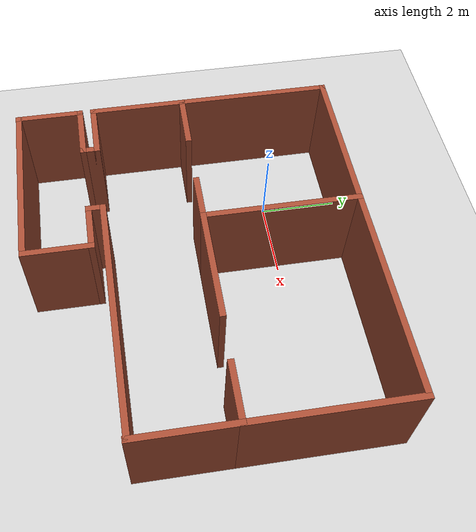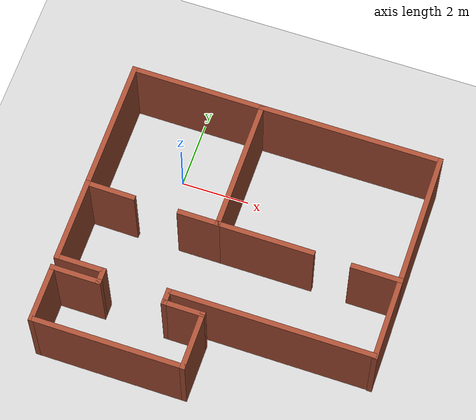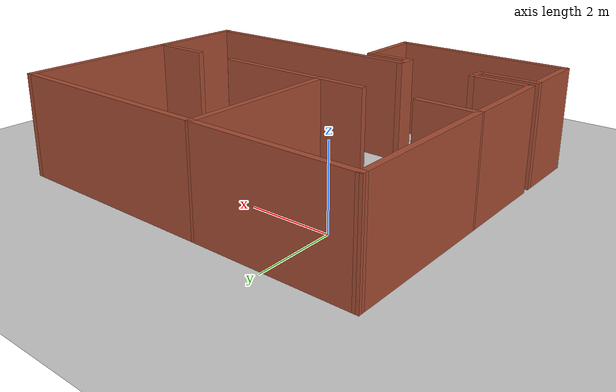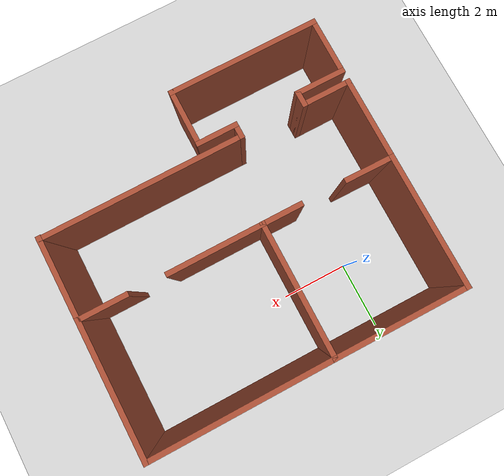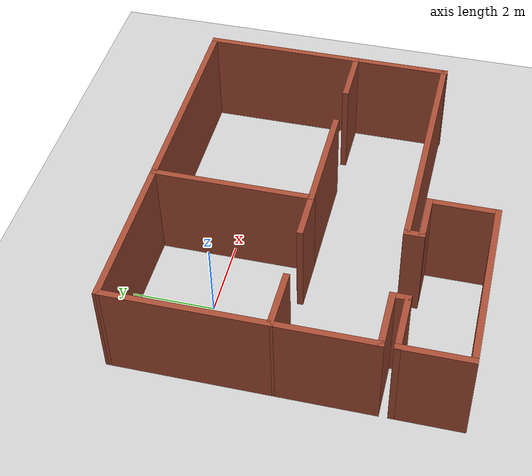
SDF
<sdf version="1.6">
 <world name="default">
  <light name="sun" type="directional">
   <pose>0 0 15 0 -0 0</pose>
   <diffuse>1 1 1 1</diffuse>
   <specular>0.1 0.1 0.1 1</specular>
   <attenuation>
    <range>1000</range>
    <constant>0.9</constant>
    <linear>0.01</linear>
    <quadratic>0.001</quadratic>
   </attenuation>
   <direction>-0.5 0.5 -1</direction>
  </light>
  <model name="ground_plane">
   <static>1</static>
   <link name="link">
    <collision name="collision">
     <geometry><plane><normal>0 0 1</normal><size>100 100</size></plane></geometry>
     <surface><friction><ode><mu>100</mu><mu2>50</mu2></ode></friction></surface>
    </collision>
    <visual name="visual">
     <transparency>1</transparency>
     <cast_shadows>0</cast_shadows>
     <geometry><plane><normal>0 0 1</normal><size>100 100</size></plane></geometry>
     <material>
      <script><uri>file://media/materials/scripts/gazebo.material</uri><name>Gazebo/Grey</name></script>
     </material>
    </visual>
   </link>
  </model>
  <gravity>0 0 -9.8</gravity>
  <magnetic_field>6e-06 2.3e-05 -4.2e-05</magnetic_field>
  <atmosphere type="adiabatic"/>
  <physics name="default_physics" default="0" type="ode">
   <max_step_size>0.001</max_step_size>
   <real_time_factor>1</real_time_factor>
   <real_time_update_rate>1000</real_time_update_rate>
  </physics>
  <scene><ambient>0.4 0.4 0.4 1</ambient><background>0.7 0.7 0.7 1</background><shadows>1</shadows></scene>
  <spherical_coordinates>
   <surface_model>EARTH_WGS84</surface_model>
   <latitude_deg>0</latitude_deg>
   <longitude_deg>0</longitude_deg>
   <elevation>0</elevation>
   <heading_deg>0</heading_deg>
  </spherical_coordinates>
  <model name="MyFlat">
   <pose>2.49948 -2.20704 0 0 -0 0</pose>
   <link name="Wall_0">
    <collision name="Wall_0_Collision">
     <geometry><box><size>4.01007 0.15 2.5</size></box></geometry>
     <pose>0 0 1.25 0 -0 0</pose>
    </collision>
    <visual name="Wall_0_Visual">
     <pose>0 0 1.25 0 -0 0</pose>
     <geometry><box><size>4.01007 0.15 2.5</size></box></geometry>
     <material>
      <script><uri>file://media/materials/scripts/gazebo.material</uri><name>Gazebo/Bricks</name></script>
      <ambient>1 1 1 1</ambient>
     </material>
    </visual>
    <pose>-2.64221 4.07484 0 0 0 -0.004404</pose>
   </link>
   <link name="Wall_10">
    <collision name="Wall_10_Collision">
     <geometry><box><size>1.5 0.15 2.5</size></box></geometry>
     <pose>0 0 1.25 0 -0 0</pose>
    </collision>
    <visual name="Wall_10_Visual">
     <pose>0 0 1.25 0 -0 0</pose>
     <geometry><box><size>1.5 0.15 2.5</size></box></geometry>
     <material>
      <script><uri>file://media/materials/scripts/gazebo.material</uri><name>Gazebo/Bricks</name></script>
      <ambient>1 1 1 1</ambient>
     </material>
    </visual>
    <pose>-3.89721 -2.13367 0 0 -0 0</pose>
   </link>
   <link name="Wall_11">
    <collision name="Wall_11_Collision">
     <geometry><box><size>0.5 0.15 2.5</size></box></geometry>
     <pose>0 0 1.25 0 -0 0</pose>
    </collision>
    <visual name="Wall_11_Visual">
     <pose>0 0 1.25 0 -0 0</pose>
     <geometry><box><size>0.5 0.15 2.5</size></box></geometry>
     <material>
      <script><uri>file://media/materials/scripts/gazebo.material</uri><name>Gazebo/Bricks</name></script>
      <ambient>1 1 1 1</ambient>
     </material>
    </visual>
    <pose>-3.22221 -2.30866 0 0 0 -1.5708</pose>
   </link>
   <link name="Wall_12">
    <collision name="Wall_12_Collision">
     <geometry><box><size>1.5 0.15 2.5</size></box></geometry>
     <pose>0 0 1.25 0 -0 0</pose>
    </collision>
    <visual name="Wall_12_Visual">
     <pose>0 0 1.25 0 -0 0</pose>
     <geometry><box><size>1.5 0.15 2.5</size></box></geometry>
     <material>
      <script><uri>file://media/materials/scripts/gazebo.material</uri><name>Gazebo/Bricks</name></script>
      <ambient>1 1 1 1</ambient>
     </material>
    </visual>
    <pose>-3.89721 -2.48366 0 0 -0 3.14159</pose>
   </link>
   <link name="Wall_13">
    <collision name="Wall_13_Collision">
     <geometry><box><size>1.75 0.15 2.5</size></box></geometry>
     <pose>0 0 1.25 0 -0 0</pose>
    </collision>
    <visual name="Wall_13_Visual">
     <pose>0 0 1.25 0 -0 0</pose>
     <geometry><box><size>1.75 0.15 2.5</size></box></geometry>
     <material>
      <script><uri>file://media/materials/scripts/gazebo.material</uri><name>Gazebo/Bricks</name></script>
      <ambient>1 1 1 1</ambient>
     </material>
    </visual>
    <pose>-4.57221 -3.28367 0 0 0 -1.5708</pose>
   </link>
   <link name="Wall_14">
    <collision name="Wall_14_Collision">
     <geometry><box><size>4.5 0.15 2.5</size></box></geometry>
     <pose>0 0 1.25 0 -0 0</pose>
    </collision>
    <visual name="Wall_14_Visual">
     <pose>0 0 1.25 0 -0 0</pose>
     <geometry><box><size>4.5 0.15 2.5</size></box></geometry>
     <material>
      <script><uri>file://media/materials/scripts/gazebo.material</uri><name>Gazebo/Bricks</name></script>
      <ambient>1 1 1 1</ambient>
     </material>
    </visual>
    <pose>-2.39721 -4.08366 0 0 -0 0</pose>
   </link>
   <link name="Wall_15">
    <collision name="Wall_15_Collision">
     <geometry><box><size>1.75 0.15 2.5</size></box></geometry>
     <pose>0 0 1.25 0 -0 0</pose>
    </collision>
    <visual name="Wall_15_Visual">
     <pose>0 0 1.25 0 -0 0</pose>
     <geometry><box><size>1.75 0.15 2.5</size></box></geometry>
     <material>
      <script><uri>file://media/materials/scripts/gazebo.material</uri><name>Gazebo/Bricks</name></script>
      <ambient>1 1 1 1</ambient>
     </material>
    </visual>
    <pose>-0.222206 -3.28367 0 0 -0 1.5708</pose>
   </link>
   <link name="Wall_16">
    <collision name="Wall_16_Collision">
     <geometry><box><size>1.25 0.15 2.5</size></box></geometry>
     <pose>0 0 1.25 0 -0 0</pose>
    </collision>
    <visual name="Wall_16_Visual">
     <pose>0 0 1.25 0 -0 0</pose>
     <geometry><box><size>1.25 0.15 2.5</size></box></geometry>
     <material>
      <script><uri>file://media/materials/scripts/gazebo.material</uri><name>Gazebo/Bricks</name></script>
      <ambient>1 1 1 1</ambient>
     </material>
    </visual>
    <pose>-0.772206 -2.48366 0 0 -0 3.14159</pose>
   </link>
   <link name="Wall_17">
    <collision name="Wall_17_Collision">
     <geometry><box><size>0.5 0.15 2.5</size></box></geometry>
     <pose>0 0 1.25 0 -0 0</pose>
    </collision>
    <visual name="Wall_17_Visual">
     <pose>0 0 1.25 0 -0 0</pose>
     <geometry><box><size>0.5 0.15 2.5</size></box></geometry>
     <material>
      <script><uri>file://media/materials/scripts/gazebo.material</uri><name>Gazebo/Bricks</name></script>
      <ambient>1 1 1 1</ambient>
     </material>
    </visual>
    <pose>-1.32221 -2.30866 0 0 -0 1.5708</pose>
   </link>
   <link name="Wall_18">
    <collision name="Wall_18_Collision">
     <geometry><box><size>6 0.15 2.5</size></box></geometry>
     <pose>0 0 1.25 0 -0 0</pose>
    </collision>
    <visual name="Wall_18_Visual">
     <pose>0 0 1.25 0 -0 0</pose>
     <geometry><box><size>6 0.15 2.5</size></box></geometry>
     <material>
      <script><uri>file://media/materials/scripts/gazebo.material</uri><name>Gazebo/Bricks</name></script>
      <ambient>1 1 1 1</ambient>
     </material>
    </visual>
    <pose>1.60279 -2.13367 0 0 -0 0</pose>
   </link>
   <link name="Wall_21">
    <collision name="Wall_21_Collision">
     <geometry><box><size>2.5 0.15 2.5</size></box></geometry>
     <pose>0 0 1.25 0 -0 0</pose>
    </collision>
    <visual name="Wall_21_Visual">
     <pose>0 0 1.25 0 -0 0</pose>
     <geometry><box><size>2.5 0.15 2.5</size></box></geometry>
     <material>
      <script><uri>file://media/materials/scripts/gazebo.material</uri><name>Gazebo/Bricks</name></script>
      <ambient>1 1 1 1</ambient>
     </material>
    </visual>
    <pose>4.57309 -0.979 0 0 -0 1.5708</pose>
   </link>
   <link name="Wall_23">
    <collision name="Wall_23_Collision">
     <geometry><box><size>2.89497 0.15 2.5</size></box></geometry>
     <pose>0 0 1.25 0 -0 0</pose>
    </collision>
    <visual name="Wall_23_Visual">
     <pose>0 0 1.25 0 -0 0</pose>
     <geometry><box><size>2.89497 0.15 2.5</size></box></geometry>
     <material>
      <script><uri>file://media/materials/scripts/gazebo.material</uri><name>Gazebo/Bricks</name></script>
      <ambient>1 1 1 1</ambient>
     </material>
    </visual>
    <pose>0.66028 0.216335 0 0 -0 0</pose>
   </link>
   <link name="Wall_25">
    <collision name="Wall_25_Collision">
     <geometry><box><size>1.5 0.15 2.5</size></box></geometry>
     <pose>0 0 1.25 0 -0 0</pose>
    </collision>
    <visual name="Wall_25_Visual">
     <pose>0 0 1.25 0 -0 0</pose>
     <geometry><box><size>1.5 0.15 2.5</size></box></geometry>
     <material>
      <script><uri>file://media/materials/scripts/gazebo.material</uri><name>Gazebo/Bricks</name></script>
      <ambient>1 1 1 1</ambient>
     </material>
    </visual>
    <pose>3.89809 0.196 0 0 -0 3.14159</pose>
   </link>
   <link name="Wall_27">
    <collision name="Wall_27_Collision">
     <geometry><box><size>5.3 0.15 2.5</size></box></geometry>
     <pose>0 0 1.25 0 -0 0</pose>
    </collision>
    <visual name="Wall_27_Visual">
     <pose>0 0 1.25 0 -0 0</pose>
     <geometry><box><size>5.3 0.15 2.5</size></box></geometry>
     <material>
      <script><uri>file://media/materials/scripts/gazebo.material</uri><name>Gazebo/Bricks</name></script>
      <ambient>1 1 1 1</ambient>
     </material>
    </visual>
    <pose>1.86279 4.06633 0 0 -0 0</pose>
   </link>
   <link name="Wall_3">
    <collision name="Wall_3_Collision">
     <geometry><box><size>4 0.15 2.5</size></box></geometry>
     <pose>0 0 1.25 0 -0 0</pose>
    </collision>
    <visual name="Wall_3_Visual">
     <pose>0 0 1.25 0 -0 0</pose>
     <geometry><box><size>4 0.15 2.5</size></box></geometry>
     <material>
      <script><uri>file://media/materials/scripts/gazebo.material</uri><name>Gazebo/Bricks</name></script>
      <ambient>1 1 1 1</ambient>
     </material>
    </visual>
    <pose>-0.712206 2.14134 0 0 0 -1.5708</pose>
   </link>
   <link name="Wall_30">
    <collision name="Wall_30_Collision">
     <geometry><box><size>4.02 0.15 2.5</size></box></geometry>
     <pose>0 0 1.25 0 -0 0</pose>
    </collision>
    <visual name="Wall_30_Visual">
     <pose>0 0 1.25 0 -0 0</pose>
     <geometry><box><size>4.02 0.15 2.5</size></box></geometry>
     <material>
      <script><uri>file://media/materials/scripts/gazebo.material</uri><name>Gazebo/Bricks</name></script>
      <ambient>1 1 1 1</ambient>
     </material>
    </visual>
    <pose>4.57309 2.131 0 0 -0 1.5708</pose>
   </link>
   <link name="Wall_4">
    <collision name="Wall_4_Collision">
     <geometry><box><size>1.26 0.15 2.5</size></box></geometry>
     <pose>0 0 1.25 0 -0 0</pose>
    </collision>
    <visual name="Wall_4_Visual">
     <pose>0 0 1.25 0 -0 0</pose>
     <geometry><box><size>1.26 0.15 2.5</size></box></geometry>
     <material>
      <script><uri>file://media/materials/scripts/gazebo.material</uri><name>Gazebo/Bricks</name></script>
      <ambient>1 1 1 1</ambient>
     </material>
    </visual>
    <pose>-1.26721 0.216335 0 0 -0 3.14159</pose>
   </link>
   <link name="Wall_6">
    <collision name="Wall_6_Collision">
     <geometry><box><size>4 0.15 2.5</size></box></geometry>
     <pose>0 0 1.25 0 -0 0</pose>
    </collision>
    <visual name="Wall_6_Visual">
     <pose>0 0 1.25 0 -0 0</pose>
     <geometry><box><size>4 0.15 2.5</size></box></geometry>
     <material>
      <script><uri>file://media/materials/scripts/gazebo.material</uri><name>Gazebo/Bricks</name></script>
      <ambient>1 1 1 1</ambient>
     </material>
    </visual>
    <pose>-4.57221 2.15834 0 0 0 -1.5708</pose>
   </link>
   <link name="Wall_7">
    <collision name="Wall_7_Collision">
     <geometry><box><size>1.5 0.15 2.5</size></box></geometry>
     <pose>0 0 1.25 0 -0 0</pose>
    </collision>
    <visual name="Wall_7_Visual">
     <pose>0 0 1.25 0 -0 0</pose>
     <geometry><box><size>1.5 0.15 2.5</size></box></geometry>
     <material>
      <script><uri>file://media/materials/scripts/gazebo.material</uri><name>Gazebo/Bricks</name></script>
      <ambient>1 1 1 1</ambient>
     </material>
    </visual>
    <pose>-3.89721 0.224835 0 0 0 -0.012592</pose>
   </link>
   <link name="Wall_9">
    <collision name="Wall_9_Collision">
     <geometry><box><size>2.517 0.15 2.5</size></box></geometry>
     <pose>0 0 1.25 0 -0 0</pose>
    </collision>
    <visual name="Wall_9_Visual">
     <pose>0 0 1.25 0 -0 0</pose>
     <geometry><box><size>2.517 0.15 2.5</size></box></geometry>
     <material>
      <script><uri>file://media/materials/scripts/gazebo.material</uri><name>Gazebo/Bricks</name></script>
      <ambient>1 1 1 1</ambient>
     </material>
    </visual>
    <pose>-4.57221 -0.950165 0 0 0 -1.5708</pose>
   </link>
   <static>1</static>
  </model>
 </world>
</sdf>
